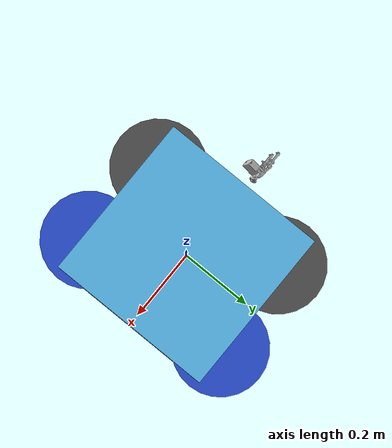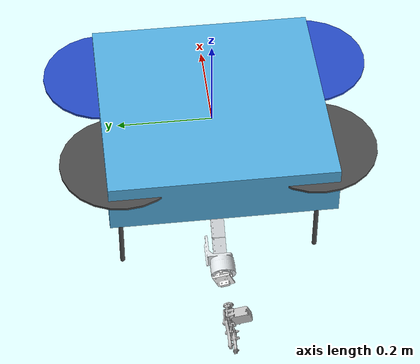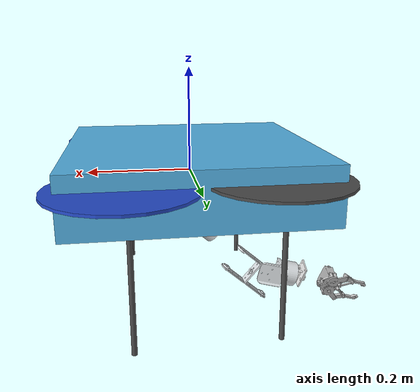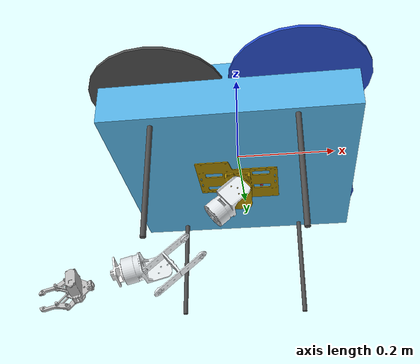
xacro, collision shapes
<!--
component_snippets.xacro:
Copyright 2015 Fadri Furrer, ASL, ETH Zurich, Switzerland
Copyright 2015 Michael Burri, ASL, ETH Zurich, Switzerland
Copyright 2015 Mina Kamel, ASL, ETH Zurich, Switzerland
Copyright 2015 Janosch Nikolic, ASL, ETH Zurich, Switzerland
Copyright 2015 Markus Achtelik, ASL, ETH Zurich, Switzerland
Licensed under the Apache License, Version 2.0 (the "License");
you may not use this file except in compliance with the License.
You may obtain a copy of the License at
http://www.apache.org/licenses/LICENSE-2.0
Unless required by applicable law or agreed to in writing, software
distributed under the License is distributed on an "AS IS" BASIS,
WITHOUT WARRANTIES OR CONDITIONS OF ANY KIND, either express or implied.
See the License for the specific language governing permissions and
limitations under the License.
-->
<?xml version="1.0"?>

<robot name="iris" xmlns:xacro="http://ros.org/wiki/xacro">
  <!-- Properties that can be assigned at build time as arguments.
  Is there a reason not to make all properties arguments?
  -->
  <xacro:arg name='name' default='iris_0' />
  <xacro:arg name='mavlink_addr' default='INADDR_ANY' />
  <xacro:arg name='mavlink_udp_port' default='14560' />
  <xacro:arg name='mavlink_tcp_port' default='4560' />
  <xacro:arg name='serial_enabled' default='false' />
  <xacro:arg name='serial_device' default='/dev/ttyACM0' />
  <xacro:arg name='baudrate' default='921600' />
  <xacro:arg name='qgc_addr' default='INADDR_ANY' />
  <xacro:arg name='qgc_udp_port' default='14550' />
  <xacro:arg name='sdk_addr' default='INADDR_ANY' />
  <xacro:arg name='sdk_udp_port' default='14540' />
  <xacro:arg name='hil_mode' default='false' />
  <xacro:arg name='hil_state_level' default='false' />
  <xacro:arg name='send_vision_estimation' default='false' />
  <xacro:arg name='send_odometry' default='false' />
  <xacro:arg name='enable_lockstep' default='true' />
  <xacro:arg name='use_tcp' default='true' />
  <xacro:arg name='vehicle_is_tailsitter' default='false' />
  <xacro:arg name='visual_material' default='DarkGrey' />
  <xacro:arg name='enable_mavlink_interface' default='true' />
  <xacro:arg name='enable_wind' default='false' />
  <!-- The following causes segfault with multiple vehicles if defaults to true!!! -->
  <xacro:arg name='enable_ground_truth' default='false' />
  <xacro:arg name='enable_cameras' default='true' />
  <xacro:arg name='enable_depth' default='true' />
  <xacro:arg name='enable_logging' default='false' />
  <xacro:arg name='log_file' default='iris' />

  <!-- macros for gazebo plugins, sensors -->
  <xacro:include filename="$(find le_arm)/urdf/component_snippets.xacro" />

  <!-- Instantiate iris "mechanics" -->
  <xacro:include filename="$(find le_arm)/urdf/iris.xacro" />

  <gazebo>
      <plugin name="gazebo_ros_control" filename="libgazebo_ros_control.so">
          <robotNamespace>/</robotNamespace>
      </plugin>

      <plugin name="gazebo_grasp_fix" filename="libgazebo_grasp_fix.so">
          <arm>
            <arm_name>gripper</arm_name>
            <palm_link>base_link</palm_link>
            <gripper_link>left_knuckle_link</gripper_link>
            <gripper_link>right_knuckle_link</gripper_link>
            <gripper_link>left_inner_knuckle_link</gripper_link>
            <gripper_link>left_finger_link</gripper_link>
            <gripper_link>right_inner_knuckle_link</gripper_link>
            <gripper_link>right_finger_link</gripper_link>
          </arm>
      <forces_angle_tolerance>10</forces_angle_tolerance>
      <update_rate>20</update_rate>
      <grip_count_threshold>1</grip_count_threshold>
      <max_grip_count>2</max_grip_count>
      <release_tolerance>0.1</release_tolerance>
      <disable_collisions_on_attach>true</disable_collisions_on_attach>
      <contact_topic>__default_topic__</contact_topic>
     </plugin>
  </gazebo>
  <!-- Instantiate arm "mechanics" -->
  <xacro:include filename="$(find le_arm)/urdf/le_arm.urdf.xacro" />
  <xacro:le_arm parent="base_link" >
    <origin xyz="0 0 0" rpy="-1.5708 0 3.14159"/>
  </xacro:le_arm>

  <xacro:if value="$(arg enable_wind)">
    <xacro:wind_plugin_macro
        namespace="${namespace}"
        wind_direction="0 0 1"
        wind_force_mean="0.7"
        xyz_offset="1 0 0"
        wind_gust_direction="0 0 0"
        wind_gust_duration="0"
        wind_gust_start="0"
        wind_gust_force_mean="0"
        />
  </xacro:if>

  <!-- Instantiate gps plugin. -->
  <xacro:gps_plugin_macro
    namespace="${namespace}"
    gps_noise="true"
    >
  </xacro:gps_plugin_macro>

  <!-- Instantiate magnetometer plugin. -->
  <xacro:magnetometer_plugin_macro
    namespace="${namespace}"
    pub_rate="20"
    noise_density="0.0004"
    random_walk="0.0000064"
    bias_correlation_time="600"
    mag_topic="/mag"
    >
  </xacro:magnetometer_plugin_macro>

  <!-- Instantiate barometer plugin. -->
  <xacro:barometer_plugin_macro
    namespace="${namespace}"
    pub_rate="10"
    baro_topic="/baro"
    >
  </xacro:barometer_plugin_macro>

  <xacro:if value="$(arg enable_mavlink_interface)">
  <!-- Instantiate mavlink telemetry interface. -->
  <xacro:mavlink_interface_macro
    namespace="${namespace}"
    imu_sub_topic="/imu"
    gps_sub_topic="/gps"
    mag_sub_topic="/mag"
    baro_sub_topic="/baro"
    mavlink_addr="$(arg mavlink_addr)"
    mavlink_udp_port="$(arg mavlink_udp_port)"
    mavlink_tcp_port="$(arg mavlink_tcp_port)"
    serial_enabled="$(arg serial_enabled)"
    serial_device="$(arg serial_device)"
    baudrate="$(arg baudrate)"
    qgc_addr="$(arg qgc_addr)"
    qgc_udp_port="$(arg qgc_udp_port)"
    sdk_addr="$(arg sdk_addr)"
    sdk_udp_port="$(arg sdk_udp_port)"
    hil_mode="$(arg hil_mode)"
    hil_state_level="$(arg hil_state_level)"
    vehicle_is_tailsitter="$(arg vehicle_is_tailsitter)"
    send_vision_estimation="$(arg send_vision_estimation)"
    send_odometry="$(arg send_odometry)"
    enable_lockstep="$(arg enable_lockstep)"
    use_tcp="$(arg use_tcp)"
    >
  </xacro:mavlink_interface_macro>
  </xacro:if>

  <!-- Mount an ADIS16448 IMU. -->
  <xacro:imu_plugin_macro
    namespace="${namespace}"
    imu_suffix=""
    parent_link="base_link"
    imu_topic="/imu"
    mass_imu_sensor="0.015"
    gyroscope_noise_density="0.0003394"
    gyroscopoe_random_walk="0.000038785"
    gyroscope_bias_correlation_time="1000.0"
    gyroscope_turn_on_bias_sigma="0.0087"
    accelerometer_noise_density="0.004"
    accelerometer_random_walk="0.006"
    accelerometer_bias_correlation_time="300.0"
    accelerometer_turn_on_bias_sigma="0.1960"
  >
    <inertia ixx="0.00001" ixy="0.0" ixz="0.0" iyy="0.00001" iyz="0.0" izz="0.00001" />
    <origin xyz="0 0 0" rpy="0 0 0" />
  </xacro:imu_plugin_macro>

  <xacro:if value="$(arg enable_ground_truth)">
    <!-- Mount an IMU providing ground truth. -->
    <xacro:imu_plugin_macro
      namespace="${namespace}"
      imu_suffix="gt"
      parent_link="base_link"
      imu_topic="ground_truth/imu"
      mass_imu_sensor="0.00001"
      gyroscope_noise_density="0.0"
      gyroscopoe_random_walk="0.0"
      gyroscope_bias_correlation_time="1000.0"
      gyroscope_turn_on_bias_sigma="0.0"
      accelerometer_noise_density="0.0"
      accelerometer_random_walk="0.0"
      accelerometer_bias_correlation_time="300.0"
      accelerometer_turn_on_bias_sigma="0.0"
    >
      <inertia ixx="0.00001" ixy="0.0" ixz="0.0" iyy="0.00001" iyz="0.0" izz="0.00001" />
      <origin xyz="0 0 0" rpy="0 0 0" />
    </xacro:imu_plugin_macro>

    <!-- Mount a generic odometry sensor providing ground truth. -->
    <xacro:odometry_plugin_macro
      namespace="${namespace}/ground_truth"
      odometry_sensor_suffix="gt"
      parent_link="base_link"
      pose_topic="pose"
      pose_with_covariance_topic="pose_with_covariance"
      position_topic="position"
      transform_topic="transform"
      odometry_topic="odometry"
      parent_frame_id="world"
      mass_odometry_sensor="0.00001"
      measurement_divisor="1"
      measurement_delay="0"
      unknown_delay="0.0"
      noise_normal_position="0 0 0"
      noise_normal_quaternion="0 0 0"
      noise_normal_linear_velocity="0 0 0"
      noise_normal_angular_velocity="0 0 0"
      noise_uniform_position="0 0 0"
      noise_uniform_quaternion="0 0 0"
      noise_uniform_linear_velocity="0 0 0"
      noise_uniform_angular_velocity="0 0 0"
      enable_odometry_map="false"
      odometry_map=""
      image_scale=""
    >
      <inertia ixx="0.00001" ixy="0.0" ixz="0.0" iyy="0.00001" iyz="0.0" izz="0.00001" /> <!-- [kg.m^2] [kg.m^2] [kg.m^2] [kg.m^2] [kg.m^2] [kg.m^2] -->
      <origin xyz="0.0 0.0 0.0" rpy="0.0 0.0 0.0" />
    </xacro:odometry_plugin_macro>
  </xacro:if>

  <xacro:if value="$(arg enable_logging)">
    <!-- Instantiate a logger -->
    <xacro:bag_plugin_macro
      namespace="${namespace}"
      bag_file="$(arg log_file)"
      rotor_velocity_slowdown_sim="${rotor_velocity_slowdown_sim}"
    >
    </xacro:bag_plugin_macro>
  </xacro:if>

  <!-- Instantiate a VI sensor. -->

  <xacro:include filename="$(find le_arm)/urdf/sensors/camera.urdf.xacro"/>

</robot>

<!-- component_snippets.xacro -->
<robot xmlns:xacro="http://ros.org/wiki/xacro">
  <!-- Macro to add logging to a bag file. -->
  <xacro:macro name="bag_plugin_macro"
    params="namespace bag_file rotor_velocity_slowdown_sim">
    <gazebo>
      <plugin filename="librotors_gazebo_bag_plugin.so" name="rosbag">
        <robotNamespace>${namespace}</robotNamespace>
        <bagFileName>${bag_file}</bagFileName>
        <linkName>base_link</linkName>
        <frameId>base_link</frameId>
        <commandAttitudeThrustSubTopic>command/attitude</commandAttitudeThrustSubTopic>
        <commandAttitudeThrustPubTopic>command/attitude</commandAttitudeThrustPubTopic>
        <rotorVelocitySlowdownSim>${rotor_velocity_slowdown_sim}</rotorVelocitySlowdownSim>
      </plugin>
    </gazebo>
  </xacro:macro>

  <!-- Macro to add a camera. -->
  <xacro:macro name="camera_macro"
    params="namespace parent_link camera_suffix frame_rate
      horizontal_fov image_width image_height image_format min_distance
      max_distance noise_mean noise_stddev enable_visual *cylinder *origin">
    <link name="${namespace}/camera_${camera_suffix}_link">
      <collision>
        <origin xyz="0 0 0" rpy="0 0 0" />
        <geometry>
          <xacro:insert_block name="cylinder" />
        </geometry>
      </collision>
      <xacro:if value="${enable_visual}">
        <visual>
          <origin xyz="0 0 0" rpy="0 1.57079632679 0" />
          <geometry>
            <xacro:insert_block name="cylinder" />
          </geometry>
          <material name="red" />
        </visual>
      </xacro:if>
      <inertial>
        <mass value="1e-5" />
        <origin xyz="0 0 0" rpy="0 0 0" />
        <inertia ixx="1e-6" ixy="0" ixz="0" iyy="1e-6" iyz="0" izz="1e-6" />
      </inertial>
    </link>
    <joint name="${namespace}/camera_${camera_suffix}_joint" type="fixed">
      <xacro:insert_block name="origin" />
      <parent link="${parent_link}" />
      <child link="${namespace}/camera_${camera_suffix}_link" />
    </joint>
    <gazebo reference="${namespace}/camera_${camera_suffix}_link">
      <sensor type="camera" name="${namespace}_camera_${camera_suffix}">
        <update_rate>${frame_rate}</update_rate>
        <camera name="head">
          <horizontal_fov>${horizontal_fov}</horizontal_fov>
          <image>
            <width>${image_width}</width>
            <height>${image_height}</height>
            <format>${image_format}</format>
          </image>
          <clip>
            <near>${min_distance}</near>
            <far>${max_distance}</far>
          </clip>
          <noise>
            <type>gaussian</type>
            <!-- Noise is sampled independently per pixel on each frame.
                 That pixel's noise value is added to each of its color
                 channels, which at that point lie in the range [0,1]. -->
            <mean>${noise_mean}</mean>
            <stddev>${noise_stddev}</stddev>
          </noise>
        </camera>
        <plugin name="${namespace}_camera_${camera_suffix}_controller" filename="libgazebo_ros_camera.so">
          <robotNamespace>${namespace}</robotNamespace>
          <alwaysOn>true</alwaysOn>
          <updateRate>${frame_rate}</updateRate>
          <cameraName>${camera_suffix}</cameraName>
          <imageTopicName>image_raw</imageTopicName>
          <cameraInfoTopicName>camera_info</cameraInfoTopicName>
          <frameName>camera_${camera_suffix}_link</frameName>
          <hackBaseline>0.0</hackBaseline>
          <distortionK1>0.0</distortionK1>
          <distortionK2>0.0</distortionK2>
          <distortionK3>0.0</distortionK3>
          <distortionT1>0.0</distortionT1>
          <distortionT2>0.0</distortionT2>
        </plugin>
      </sensor>
    </gazebo>
  </xacro:macro>

  <!-- Macro to add the controller interface. -->
  <xacro:macro name="controller_plugin_macro" params="namespace imu_sub_topic">
    <gazebo>
      <plugin name="controller_interface" filename="libgazebo_controller_interface.so">
        <robotNamespace>${namespace}</robotNamespace>
        <commandAttitudeThrustSubTopic>/command/attitude</commandAttitudeThrustSubTopic>
        <commandRateThrustSubTopic>/command/rate</commandRateThrustSubTopic>
        <commandMotorSpeedSubTopic>/command/motor_speed</commandMotorSpeedSubTopic>
        <imuSubTopic>/${imu_sub_topic}</imuSubTopic>
        <motorSpeedCommandPubTopic>/gazebo/command/motor_speed</motorSpeedCommandPubTopic>
      </plugin>
    </gazebo>
  </xacro:macro>

  <!-- Macro to add the gps_plugin. -->
  <xacro:macro name="gps_plugin_macro" params="namespace gps_noise">
    <gazebo>
      <plugin name="gps_plugin" filename="libgazebo_gps_plugin.so">
        <robotNamespace>${namespace}</robotNamespace>
        <gpsNoise>${gps_noise}</gpsNoise>
      </plugin>
    </gazebo>
  </xacro:macro>

  <!-- Macro to add the magnetometer_plugin. -->
  <xacro:macro name="magnetometer_plugin_macro" params="namespace pub_rate noise_density random_walk bias_correlation_time mag_topic">
    <gazebo>
      <plugin name="magnetometer_plugin" filename="libgazebo_magnetometer_plugin.so">
        <robotNamespace>${namespace}</robotNamespace>
        <pubRate>${pub_rate}</pubRate>
        <noiseDensity>${noise_density}</noiseDensity>
        <randomWalk>${random_walk}</randomWalk>
        <biasCorrelationTime>${bias_correlation_time}</biasCorrelationTime>
        <magTopic>${mag_topic}</magTopic>
      </plugin>
    </gazebo>
  </xacro:macro>

  <!-- Macro to add the barometer_plugin. -->
  <xacro:macro name="barometer_plugin_macro" params="namespace pub_rate baro_topic">
    <gazebo>
      <plugin name="barometer_plugin" filename="libgazebo_barometer_plugin.so">
        <robotNamespace>${namespace}</robotNamespace>
        <pubRate>${pub_rate}</pubRate>
        <baroTopic>${baro_topic}</baroTopic>
      </plugin>
    </gazebo>
  </xacro:macro>

  <!-- Macro to add the mavlink interface. -->
  <xacro:macro name="mavlink_interface_macro" params="namespace imu_sub_topic gps_sub_topic mag_sub_topic baro_sub_topic mavlink_addr mavlink_udp_port mavlink_tcp_port serial_enabled serial_device baudrate qgc_addr qgc_udp_port sdk_addr sdk_udp_port hil_mode hil_state_level vehicle_is_tailsitter send_vision_estimation send_odometry enable_lockstep use_tcp">
    <gazebo>
      <plugin name="mavlink_interface" filename="libgazebo_mavlink_interface.so">
        <robotNamespace>${namespace}</robotNamespace>
        <imuSubTopic>${imu_sub_topic}</imuSubTopic>
        <gpsSubTopic>${gps_sub_topic}</gpsSubTopic>
        <magSubTopic>${mag_sub_topic}</magSubTopic>
        <baroSubTopic>${baro_sub_topic}</baroSubTopic>
        <mavlink_addr>$(arg mavlink_addr)</mavlink_addr>
        <mavlink_udp_port>$(arg mavlink_udp_port)</mavlink_udp_port>
        <mavlink_tcp_port>$(arg mavlink_tcp_port)</mavlink_tcp_port>
        <serialEnabled>$(arg serial_enabled)</serialEnabled>
        <serialDevice>$(arg serial_device)</serialDevice>
        <baudRate>$(arg baudrate)</baudRate>
        <qgc_addr>$(arg qgc_addr)</qgc_addr>
        <qgc_udp_port>$(arg qgc_udp_port)</qgc_udp_port>
        <sdk_addr>$(arg sdk_addr)</sdk_addr>
        <sdk_udp_port>$(arg sdk_udp_port)</sdk_udp_port>
        <hil_mode>$(arg hil_mode)</hil_mode>
        <hil_state_level>$(arg hil_state_level)</hil_state_level>
        <vehicle_is_tailsitter>$(arg vehicle_is_tailsitter)</vehicle_is_tailsitter>
        <send_vision_estimation>$(arg send_vision_estimation)</send_vision_estimation>
        <send_odometry>$(arg send_odometry)</send_odometry>
        <enable_lockstep>$(arg enable_lockstep)</enable_lockstep>
        <use_tcp>$(arg use_tcp)</use_tcp>
        <motorSpeedCommandPubTopic>/gazebo/command/motor_speed</motorSpeedCommandPubTopic>
        <control_channels>
          <channel name="rotor1">
            <input_index>0</input_index>
            <input_offset>0</input_offset>
            <input_scaling>1000</input_scaling>
            <zero_position_disarmed>0</zero_position_disarmed>
            <zero_position_armed>100</zero_position_armed>
            <joint_control_type>velocity</joint_control_type>
          </channel>
          <channel name="rotor2">
            <input_index>1</input_index>
            <input_offset>0</input_offset>
            <input_scaling>1000</input_scaling>
            <zero_position_disarmed>0</zero_position_disarmed>
            <zero_position_armed>100</zero_position_armed>
            <joint_control_type>velocity</joint_control_type>
          </channel>
          <channel name="rotor3">
            <input_index>2</input_index>
            <input_offset>0</input_offset>
            <input_scaling>1000</input_scaling>
            <zero_position_disarmed>0</zero_position_disarmed>
            <zero_position_armed>100</zero_position_armed>
            <joint_control_type>velocity</joint_control_type>
          </channel>
          <channel name="rotor4">
            <input_index>3</input_index>
            <input_offset>0</input_offset>
            <input_scaling>1000</input_scaling>
            <zero_position_disarmed>0</zero_position_disarmed>
            <zero_position_armed>100</zero_position_armed>
            <joint_control_type>velocity</joint_control_type>
          </channel>
          <channel name="rotor5">
            <input_index>4</input_index>
            <input_offset>1</input_offset>
            <input_scaling>324.6</input_scaling>
            <zero_position_disarmed>0</zero_position_disarmed>
            <zero_position_armed>0</zero_position_armed>
            <joint_control_type>velocity</joint_control_type>
            <joint_control_pid>
              <p>0.1</p>
              <i>0</i>
              <d>0</d>
              <iMax>0.0</iMax>
              <iMin>0.0</iMin>
              <cmdMax>2</cmdMax>
              <cmdMin>-2</cmdMin>
            </joint_control_pid>
            <joint_name>zephyr_delta_wing::propeller_joint</joint_name>
          </channel>
          <channel name="rotor6">
            <input_index>5</input_index>
            <input_offset>0</input_offset>
            <!-- joint limits [-0.524, 0.524] -->
            <input_scaling>0.524</input_scaling>
            <zero_position_disarmed>0</zero_position_disarmed>
            <zero_position_armed>0</zero_position_armed>
            <joint_control_type>position</joint_control_type>
            <joint_name>zephyr_delta_wing::flap_left_joint</joint_name>
            <joint_control_pid>
              <p>10.0</p>
              <i>0</i>
              <d>0</d>
              <iMax>0</iMax>
              <iMin>0</iMin>
              <cmdMax>20</cmdMax>
              <cmdMin>-20</cmdMin>
            </joint_control_pid>
          </channel>
          <channel name="rotor7">
            <input_index>6</input_index>
            <input_offset>0</input_offset>
            <!-- joint limits [-0.524, 0.524] -->
            <input_scaling>0.524</input_scaling>
            <zero_position_disarmed>0</zero_position_disarmed>
            <zero_position_armed>0</zero_position_armed>
            <joint_control_type>position</joint_control_type>
            <joint_name>zephyr_delta_wing::flap_right_joint</joint_name>
            <joint_control_pid>
              <p>10.0</p>
              <i>0</i>
              <d>0</d>
              <iMax>0</iMax>
              <iMin>0</iMin>
              <cmdMax>20</cmdMax>
              <cmdMin>-20</cmdMin>
            </joint_control_pid>
          </channel>
          <channel name="rotor8">
            <input_index>7</input_index>
            <input_offset>0</input_offset>
            <input_scaling>0.524</input_scaling>
            <zero_position_disarmed>0</zero_position_disarmed>
            <zero_position_armed>0</zero_position_armed>
            <joint_control_type>position</joint_control_type>
          </channel>
        </control_channels>
      </plugin>
    </gazebo>
  </xacro:macro>

  <!-- Macro to add the mavlink interface for a fixed-wing model. -->
  <xacro:macro name="mavlink_interface_macro_fw" params="namespace imu_sub_topic gps_sub_topic mag_sub_topic baro_sub_topic mavlink_addr mavlink_udp_port mavlink_tcp_port serial_enabled serial_device baudrate qgc_addr qgc_udp_port sdk_addr sdk_udp_port hil_mode hil_state_level vehicle_is_tailsitter send_vision_estimation send_odometry enable_lockstep use_tcp">
    <gazebo>
      <plugin name="mavlink_interface" filename="libgazebo_mavlink_interface.so">
        <robotNamespace>${namespace}</robotNamespace>
        <imuSubTopic>${imu_sub_topic}</imuSubTopic>
        <gpsSubTopic>${gps_sub_topic}</gpsSubTopic>
        <magSubTopic>${mag_sub_topic}</magSubTopic>
        <baroSubTopic>${baro_sub_topic}</baroSubTopic>
        <mavlink_addr>$(arg mavlink_addr)</mavlink_addr>
        <mavlink_udp_port>$(arg mavlink_udp_port)</mavlink_udp_port>
        <mavlink_tcp_port>$(arg mavlink_tcp_port)</mavlink_tcp_port>
        <serialEnabled>$(arg serial_enabled)</serialEnabled>
        <serialDevice>$(arg serial_device)</serialDevice>
        <baudRate>$(arg baudrate)</baudRate>
        <qgc_addr>$(arg qgc_addr)</qgc_addr>
        <qgc_udp_port>$(arg qgc_udp_port)</qgc_udp_port>
        <sdk_addr>$(arg sdk_addr)</sdk_addr>
        <sdk_udp_port>$(arg sdk_udp_port)</sdk_udp_port>
        <hil_mode>$(arg hil_mode)</hil_mode>
        <hil_state_level>$(arg hil_state_level)</hil_state_level>
        <vehicle_is_tailsitter>$(arg vehicle_is_tailsitter)</vehicle_is_tailsitter>
        <send_vision_estimation>$(arg send_vision_estimation)</send_vision_estimation>
        <send_odometry>$(arg send_odometry)</send_odometry>
        <enable_lockstep>$(arg enable_lockstep)</enable_lockstep>
        <use_tcp>$(arg use_tcp)</use_tcp>
        <motorSpeedCommandPubTopic>/gazebo/command/motor_speed</motorSpeedCommandPubTopic>
        <control_channels>
          <channel name="rudder">
            <input_index>2</input_index>
            <input_offset>0</input_offset>
            <input_scaling>1</input_scaling>
            <zero_position_disarmed>0</zero_position_disarmed>
            <zero_position_armed>0</zero_position_armed>
            <joint_control_type>position_kinematic</joint_control_type>
            <joint_name>rudder_joint</joint_name>
          </channel>
          <channel name="rotor_4">
            <input_index>4</input_index>
            <input_offset>0</input_offset>
            <input_scaling>3500</input_scaling>
            <zero_position_disarmed>0</zero_position_disarmed>
            <zero_position_armed>0</zero_position_armed>
            <joint_control_type>velocity</joint_control_type>
            <joint_name>rotor_4_joint</joint_name>
          </channel>
          <channel name="left_aileron">
            <input_index>5</input_index>
            <input_offset>0</input_offset>
            <input_scaling>1</input_scaling>
            <zero_position_disarmed>0</zero_position_disarmed>
            <zero_position_armed>0</zero_position_armed>
            <joint_control_type>position_kinematic</joint_control_type>
            <joint_name>left_elevon_joint</joint_name>
          </channel>
          <channel name="right_aileron">
            <input_index>6</input_index>
            <input_offset>0</input_offset>
            <input_scaling>1</input_scaling>
            <zero_position_disarmed>0</zero_position_disarmed>
            <zero_position_armed>0</zero_position_armed>
            <joint_control_type>position_kinematic</joint_control_type>
            <joint_name>right_elevon_joint</joint_name>
          </channel>
          <channel name="elevator">
            <input_index>7</input_index>
            <input_offset>0</input_offset>
            <input_scaling>1</input_scaling>
            <zero_position_disarmed>0</zero_position_disarmed>
            <zero_position_armed>0</zero_position_armed>
            <joint_control_type>position_kinematic</joint_control_type>
            <joint_name>elevator_joint</joint_name>
          </channel>
        </control_channels>
      </plugin>
    </gazebo>
  </xacro:macro>

  <!-- Macro to add the mavlink interface for a fixed-wing model. -->
  <xacro:macro name="mavlink_interface_macro_vtol" params="namespace imu_sub_topic gps_sub_topic mag_sub_topic baro_sub_topic mavlink_addr mavlink_udp_port mavlink_tcp_port serial_enabled serial_device baudrate qgc_addr qgc_udp_port sdk_addr sdk_udp_port hil_mode hil_state_level vehicle_is_tailsitter send_vision_estimation send_odometry enable_lockstep use_tcp">
    <gazebo>
      <plugin name='mavlink_interface' filename='libgazebo_mavlink_interface.so'>
        <robotNamespace>${namespace}</robotNamespace>
        <imuSubTopic>${imu_sub_topic}</imuSubTopic>
        <gpsSubTopic>${gps_sub_topic}</gpsSubTopic>
        <magSubTopic>${mag_sub_topic}</magSubTopic>
        <baroSubTopic>${baro_sub_topic}</baroSubTopic>
        <mavlink_addr>$(arg mavlink_addr)</mavlink_addr>
        <mavlink_udp_port>$(arg mavlink_udp_port)</mavlink_udp_port>
        <mavlink_tcp_port>$(arg mavlink_tcp_port)</mavlink_tcp_port>
        <serialEnabled>$(arg serial_enabled)</serialEnabled>
        <serialDevice>$(arg serial_device)</serialDevice>
        <baudRate>$(arg baudrate)</baudRate>
        <qgc_addr>$(arg qgc_addr)</qgc_addr>
        <qgc_udp_port>$(arg qgc_udp_port)</qgc_udp_port>
        <sdk_addr>$(arg sdk_addr)</sdk_addr>
        <sdk_udp_port>$(arg sdk_udp_port)</sdk_udp_port>
        <hil_mode>$(arg hil_mode)</hil_mode>
        <hil_state_level>$(arg hil_state_level)</hil_state_level>
        <vehicle_is_tailsitter>$(arg vehicle_is_tailsitter)</vehicle_is_tailsitter>
        <send_vision_estimation>$(arg send_vision_estimation)</send_vision_estimation>
        <send_odometry>$(arg send_odometry)</send_odometry>
        <enable_lockstep>$(arg enable_lockstep)</enable_lockstep>
        <use_tcp>$(arg use_tcp)</use_tcp>
        <motorSpeedCommandPubTopic>/gazebo/command/motor_speed</motorSpeedCommandPubTopic>
        <control_channels>
          <channel name="rotor0">
            <input_index>0</input_index>
            <input_offset>0</input_offset>
            <input_scaling>1500</input_scaling>
            <zero_position_disarmed>0</zero_position_disarmed>
            <zero_position_armed>0</zero_position_armed>
            <joint_control_type>velocity</joint_control_type>
            <joint_name>rotor_0_joint</joint_name>
          </channel>
          <channel name="rotor1">
            <input_index>1</input_index>
            <input_offset>0</input_offset>
            <input_scaling>1500</input_scaling>
            <zero_position_disarmed>0</zero_position_disarmed>
            <zero_position_armed>0</zero_position_armed>
            <joint_control_type>velocity</joint_control_type>
            <joint_name>rotor_1_joint</joint_name>
          </channel>
          <channel name="rotor2">
            <input_index>2</input_index>
            <input_offset>0</input_offset>
            <input_scaling>1500</input_scaling>
            <zero_position_disarmed>0</zero_position_disarmed>
            <zero_position_armed>0</zero_position_armed>
            <joint_control_type>velocity</joint_control_type>
            <joint_name>rotor_2_joint</joint_name>
          </channel>
          <channel name="rotor3">
            <input_index>3</input_index>
            <input_offset>0</input_offset>
            <input_scaling>1500</input_scaling>
            <zero_position_disarmed>0</zero_position_disarmed>
            <zero_position_armed>0</zero_position_armed>
            <joint_control_type>velocity</joint_control_type>
            <joint_name>rotor_3_joint</joint_name>
          </channel>
          <channel name="rotor4">
            <input_index>4</input_index>
            <input_offset>0</input_offset>
            <input_scaling>5500</input_scaling>
            <zero_position_disarmed>0</zero_position_disarmed>
            <zero_position_armed>0</zero_position_armed>
            <joint_control_type>velocity</joint_control_type>
            <joint_name>rotor_puller_joint</joint_name>
          </channel>
          <channel name="left_elevon">
            <input_index>5</input_index>
            <input_offset>0</input_offset>
            <input_scaling>1</input_scaling>
            <zero_position_disarmed>0</zero_position_disarmed>
            <zero_position_armed>0</zero_position_armed>
            <joint_control_type>position_kinematic</joint_control_type>
            <joint_name>left_elevon_joint</joint_name>
          </channel>
          <channel name="right_elevon">
            <input_index>6</input_index>
            <input_offset>0</input_offset>
            <input_scaling>1</input_scaling>
            <zero_position_disarmed>0</zero_position_disarmed>
            <zero_position_armed>0</zero_position_armed>
            <joint_control_type>position_kinematic</joint_control_type>
            <joint_name>right_elevon_joint</joint_name>
          </channel>
          <channel name="elevator">
            <input_index>7</input_index>
            <input_offset>0</input_offset>
            <input_scaling>1</input_scaling>
            <zero_position_disarmed>0</zero_position_disarmed>
            <zero_position_armed>0</zero_position_armed>
            <joint_control_type>position_kinematic</joint_control_type>
            <joint_name>elevator_joint</joint_name>
          </channel>
        </control_channels>
        <left_elevon_joint>
          left_elevon_joint
        </left_elevon_joint>
        <right_elevon_joint>
          right_elevon_joint
        </right_elevon_joint>
        <elevator_joint>
          elevator_joint
        </elevator_joint>
      </plugin>
    </gazebo>
  </xacro:macro>

  <!-- Macro to add an IMU. -->
  <xacro:macro name="imu_plugin_macro"
    params="namespace imu_suffix parent_link imu_topic
      mass_imu_sensor gyroscope_noise_density gyroscopoe_random_walk
      gyroscope_bias_correlation_time gyroscope_turn_on_bias_sigma
      accelerometer_noise_density accelerometer_random_walk
      accelerometer_bias_correlation_time accelerometer_turn_on_bias_sigma
      *inertia *origin">
    <!-- IMU link -->
    <link name="${namespace}/imu${imu_suffix}_link">
      <inertial>
        <xacro:insert_block name="inertia" />
        <mass value="${mass_imu_sensor}" />  <!-- [kg] -->
        <origin xyz="0 0 0" rpy="0 0 0" />
      </inertial>
    </link>
    <!-- IMU joint -->
    <joint name="${namespace}/imu${imu_suffix}_joint" type="revolute">
      <xacro:insert_block name="origin" />
      <parent link="${parent_link}" />
      <child link="${namespace}/imu${imu_suffix}_link" />
      <limit upper="0" lower="0" effort="0" velocity="0" />
    </joint>
    <gazebo>
      <plugin filename="libgazebo_imu_plugin.so" name="rotors_gazebo_imu${imu_suffix}_plugin">
      <!-- A good description of the IMU parameters can be found in the kalibr documentation:
           https://github.com/ethz-asl/kalibr/wiki/IMU-Noise-Model-and-Intrinsics -->
        <robotNamespace>${namespace}</robotNamespace> <!-- (string, required): ros namespace in which the messages are published -->
        <linkName>${namespace}/imu${imu_suffix}_link</linkName> <!-- (string, required): name of the body which holds the IMU sensor -->
        <imuTopic>${imu_topic}</imuTopic> <!-- (string): name of the sensor output topic and prefix of service names (defaults to imu) -->
        <gyroscopeNoiseDensity>${gyroscope_noise_density}</gyroscopeNoiseDensity> <!-- Gyroscope noise density (two-sided spectrum) [rad/s/sqrt(Hz)] -->
        <gyroscopeRandomWalk>${gyroscopoe_random_walk}</gyroscopeRandomWalk> <!-- Gyroscope bias random walk [rad/s/s/sqrt(Hz)] -->
        <gyroscopeBiasCorrelationTime>${gyroscope_bias_correlation_time}</gyroscopeBiasCorrelationTime> <!-- Gyroscope bias correlation time constant [s] -->
        <gyroscopeTurnOnBiasSigma>${gyroscope_turn_on_bias_sigma}</gyroscopeTurnOnBiasSigma> <!-- Gyroscope turn on bias standard deviation [rad/s] -->
        <accelerometerNoiseDensity>${accelerometer_noise_density}</accelerometerNoiseDensity> <!-- Accelerometer noise density (two-sided spectrum) [m/s^2/sqrt(Hz)] -->
        <accelerometerRandomWalk>${accelerometer_random_walk}</accelerometerRandomWalk> <!-- Accelerometer bias random walk. [m/s^2/s/sqrt(Hz)] -->
        <accelerometerBiasCorrelationTime>${accelerometer_bias_correlation_time}</accelerometerBiasCorrelationTime> <!-- Accelerometer bias correlation time constant [s] -->
        <accelerometerTurnOnBiasSigma>${accelerometer_turn_on_bias_sigma}</accelerometerTurnOnBiasSigma> <!-- Accelerometer turn on bias standard deviation [m/s^2] -->
      </plugin>
    </gazebo>
  </xacro:macro>

<!-- Macro to add a generic odometry sensor. -->
  <xacro:macro name="odometry_plugin_macro"
    params="
      namespace odometry_sensor_suffix parent_link pose_topic pose_with_covariance_topic
      position_topic transform_topic odometry_topic parent_frame_id
      mass_odometry_sensor measurement_divisor measurement_delay unknown_delay
      noise_normal_position noise_normal_quaternion noise_normal_linear_velocity
      noise_normal_angular_velocity noise_uniform_position
      noise_uniform_quaternion noise_uniform_linear_velocity
      noise_uniform_angular_velocity enable_odometry_map odometry_map
      image_scale *inertia *origin">
    <!-- odometry link -->
    <link name="${namespace}/odometry_sensor${odometry_sensor_suffix}_link">
      <inertial>
        <xacro:insert_block name="inertia" />
        <mass value="${mass_odometry_sensor}" />  <!-- [kg] -->
      </inertial>
    </link>
    <!-- odometry joint -->
    <joint name="${namespace}/odometry_sensor${odometry_sensor_suffix}_joint" type="revolute">
      <parent link="${parent_link}" />
      <xacro:insert_block name="origin" />
      <child link="${namespace}/odometry_sensor${odometry_sensor_suffix}_link" />
      <limit upper="0" lower="0" effort="0" velocity="0" />
    </joint>
    <gazebo>
      <plugin filename="librotors_gazebo_odometry_plugin.so" name="odometry_sensor${odometry_sensor_suffix}">
        <linkName>${namespace}/odometry_sensor${odometry_sensor_suffix}_link</linkName>
        <robotNamespace>${namespace}</robotNamespace>
        <poseTopic>${pose_topic}</poseTopic>
        <poseWithCovarianceTopic>${pose_with_covariance_topic}</poseWithCovarianceTopic>
        <positionTopic>${position_topic}</positionTopic>
        <transformTopic>${transform_topic}</transformTopic>
        <odometryTopic>${odometry_topic}</odometryTopic>
        <parentFrameId>${parent_frame_id}</parentFrameId>  <!-- Use the scoped link name here. e.g. Model::link. -->
        <measurementDivisor>${measurement_divisor}</measurementDivisor> <!-- only every (seq % measurementDivisor) == 0 measurement is published [int] -->
        <measurementDelay>${measurement_delay}</measurementDelay> <!-- time that measurement gets held back before it's published in [simulation cycles (int)] -->
        <unknownDelay>${unknown_delay}</unknownDelay> <!-- additional delay, that just gets added to the timestamp [s] -->
        <noiseNormalPosition>${noise_normal_position}</noiseNormalPosition> <!-- standard deviation of additive white gaussian noise [m] -->
        <noiseNormalQuaternion>${noise_normal_quaternion}</noiseNormalQuaternion> <!-- standard deviation white gaussian noise [rad]: q_m = q*quaternionFromSmallAngleApproximation(noiseNormalQ) -->
        <noiseNormalLinearVelocity>${noise_normal_linear_velocity}</noiseNormalLinearVelocity> <!-- standard deviation of additive white gaussian noise [m/s] -->
        <noiseNormalAngularVelocity>${noise_normal_angular_velocity}</noiseNormalAngularVelocity> <!-- standard deviation of additive white gaussian noise [rad/s] -->
        <noiseUniformPosition>${noise_uniform_position}</noiseUniformPosition> <!-- symmetric bounds of uniform noise [m] -->
        <noiseUniformQuaternion>${noise_uniform_quaternion}</noiseUniformQuaternion> <!-- symmetric bounds of uniform noise [rad], computation see above -->
        <noiseUniformLinearVelocity>${noise_uniform_linear_velocity}</noiseUniformLinearVelocity>  <!-- symmetric bounds of uniform noise [m/s] -->
        <noiseUniformAngularVelocity>${noise_uniform_angular_velocity}</noiseUniformAngularVelocity>  <!-- symmetric bounds of uniform noise [rad/s] -->
        <xacro:if value="${enable_odometry_map}">
          <covarianceImage>package://rotors_gazebo/resource/${odometry_map}</covarianceImage>
          <covarianceImageScale>${image_scale}</covarianceImageScale>
        </xacro:if>
      </plugin>
    </gazebo>
  </xacro:macro>

  <!-- Macro to add the wind plugin. -->
  <xacro:macro name="wind_plugin_macro"
    params="namespace xyz_offset wind_direction wind_force_mean
      wind_gust_direction wind_gust_duration wind_gust_start
      wind_gust_force_mean">
    <gazebo>
      <plugin filename="libgazebo_wind_plugin.so" name="wind_plugin">
        <frameId>base_link</frameId>
        <linkName>base_link</linkName>
        <robotNamespace>${namespace}</robotNamespace>
        <xyzOffset>${xyz_offset}</xyzOffset>
        <windDirection>${wind_direction}</windDirection>
        <windForceMean>${wind_force_mean}</windForceMean>
        <windGustDirection>${wind_gust_direction}</windGustDirection>
        <windGustDuration>${wind_gust_duration}</windGustDuration>
        <windGustStart>${wind_gust_start}</windGustStart>
        <windGustForceMean>${wind_gust_force_mean}</windGustForceMean>
      </plugin>
    </gazebo>
  </xacro:macro>

  <!-- VI sensor macros -->
  <!-- Macro to add a VI-sensor camera. -->
  <xacro:macro name="vi_sensor_camera_macro"
    params="namespace parent_link camera_suffix frame_rate *origin">
    <xacro:camera_macro
      namespace="${namespace}"
      parent_link="${parent_link}"
      camera_suffix="${camera_suffix}"
      frame_rate="${frame_rate}"
      horizontal_fov="1.3962634"
      image_width="752"
      image_height="480"
      image_format="L8"
      min_distance="0.02"
      max_distance="30"
      noise_mean="0.0"
      noise_stddev="0.007"
      enable_visual="false">
      <cylinder length="0.01" radius="0.007" />
      <xacro:insert_block name="origin" />
    </xacro:camera_macro>
  </xacro:macro>

  <!-- Macro to add a depth camera on the VI-sensor. -->
  <xacro:macro name="vi_sensor_depth_macro"
    params="namespace parent_link camera_suffix frame_rate *origin">
    <link name="${namespace}/camera_${camera_suffix}_link">
      <collision>
        <origin xyz="0 0 0" rpy="0 0 0" />
        <geometry>
          <cylinder length="0.01" radius="0.007" />
        </geometry>
      </collision>
      <inertial>
        <mass value="1e-5" />
        <origin xyz="0 0 0" rpy="0 0 0" />
        <inertia ixx="1e-6" ixy="0" ixz="0" iyy="1e-6" iyz="0" izz="1e-6" />
      </inertial>
    </link>
    <joint name="${namespace}/camera_${camera_suffix}_joint" type="fixed">
      <xacro:insert_block name="origin" />
      <parent link="${parent_link}" />
      <child link="${namespace}/camera_${camera_suffix}_link" />
      <limit upper="0" lower="0" effort="0" velocity="0" />
    </joint>
    <!-- Optical center of camera -->
    <link name="${namespace}/camera_${camera_suffix}_optical_center_link" />
    <joint name="${namespace}/camera_${camera_suffix}_optical_center_joint" type="fixed">
      <origin xyz="0 0 0" rpy="-1.57 0 -1.57" />
      <parent link="${namespace}/camera_${camera_suffix}_link" />
      <child link="${namespace}/camera_${camera_suffix}_optical_center_link" />
      <limit upper="0" lower="0" effort="0" velocity="0" />
    </joint>
    <gazebo reference="${namespace}/camera_${camera_suffix}_link">
      <sensor type="depth" name="${namespace}_camera_{camera_suffix}">
        <always_on>true</always_on>
        <update_rate>${frame_rate}</update_rate>
        <camera>
          <horizontal_fov>2</horizontal_fov>
          <image>
            <format>L8</format>
            <width>640</width>
            <height>480</height>
          </image>
          <clip>
            <near>0.01</near>
            <far>100</far>
          </clip>
        </camera>
        <plugin name="${namespace}_camera_{camera_suffix}" filename="libgazebo_ros_openni_kinect.so">
          <robotNamespace>${namespace}</robotNamespace>
          <alwaysOn>true</alwaysOn>
          <baseline>0.11</baseline>
          <updateRate>${frame_rate}</updateRate>
          <cameraName>camera_${camera_suffix}</cameraName>
          <imageTopicName>camera/image_raw</imageTopicName>
          <cameraInfoTopicName>camera/camera_info</cameraInfoTopicName>
          <depthImageTopicName>depth/disparity</depthImageTopicName>
          <depthImageCameraInfoTopicName>depth/camera_info</depthImageCameraInfoTopicName>
          <pointCloudTopicName>depth/points</pointCloudTopicName>
          <frameName>camera_${camera_suffix}_optical_center_link</frameName>
          <pointCloudCutoff>0.5</pointCloudCutoff>
          <distortionK1>0.0</distortionK1>
          <distortionK2>0.0</distortionK2>
          <distortionK3>0.0</distortionK3>
          <distortionT1>0.0</distortionT1>
          <distortionT2>0.0</distortionT2>
        </plugin>
      </sensor>
    </gazebo>
  </xacro:macro>

  <!-- VI-Sensor Macro -->
  <xacro:macro name="vi_sensor_macro" params="namespace parent_link *origin">
    <!-- Vi Sensor Link -->
    <link name="${namespace}/vi_sensor_link">
      <collision>
        <origin xyz="0 0 0" rpy="0 0 0" />
        <geometry>
         <box size="0.015 0.1 0.02" />
        </geometry>
      </collision>

      <visual>
        <origin xyz="0 0 0" rpy="0 0 0" />
        <geometry>
          <box size="0.015 0.1 0.02" />
        </geometry>
      </visual>

      <inertial>
        <mass value="0.13" />
        <origin xyz="0 0 0" rpy="0 0 0" />
        <inertia ixx="1e-6" ixy="0" ixz="0" iyy="1e-6" iyz="0" izz="1e-6" />
      </inertial>
    </link>
    <joint name="{namespace}_vi_sensor_joint" type="fixed">
      <xacro:insert_block name="origin" />
      <parent link="${parent_link}" />
      <child link="${namespace}/vi_sensor_link" />
    </joint>
    <!-- Cameras -->
    <xacro:if value="$(arg enable_cameras)">
      <!-- Left Camera -->
      <xacro:vi_sensor_camera_macro
        namespace="${namespace}/stereo_camera" parent_link="${namespace}/vi_sensor_link"
        camera_suffix="left" frame_rate="30.0">
        <origin xyz="0.015 0.055 0.0065" rpy="0 0 0" />
      </xacro:vi_sensor_camera_macro>
      <!-- Right Camera -->
      <xacro:vi_sensor_camera_macro namespace="${namespace}/stereo_camera"
        parent_link="${namespace}/vi_sensor_link"
        camera_suffix="right" frame_rate="30.0">
        <origin xyz="0.015 -0.055 0.0065" rpy="0 0 0" />
      </xacro:vi_sensor_camera_macro>
    </xacro:if>

    <!-- Depth Sensor -->
    <xacro:if value="$(arg enable_depth)">
      <xacro:vi_sensor_depth_macro
        namespace="${namespace}" parent_link="${namespace}/vi_sensor_link"
        camera_suffix="depth" frame_rate="30.0">
        <origin xyz="0.015 0.055 0.0065" rpy="0 0 0" />
      </xacro:vi_sensor_depth_macro>
    </xacro:if>

    <!-- Groundtruth -->
    <xacro:if value="$(arg enable_ground_truth)">
      <!-- Odometry Sensor -->
      <xacro:odometry_plugin_macro
        namespace="${namespace}/ground_truth"
        odometry_sensor_suffix=""
        parent_link="${namespace}/vi_sensor_link"
        pose_topic="pose"
        pose_with_covariance_topic="pose_with_covariance"
        position_topic="position"
        transform_topic="transform"
        odometry_topic="odometry"
        parent_frame_id="world"
        mass_odometry_sensor="0.00001"
        measurement_divisor="1"
        measurement_delay="0"
        unknown_delay="0.0"
        noise_normal_position="0 0 0"
        noise_normal_quaternion="0 0 0"
        noise_normal_linear_velocity="0 0 0"
        noise_normal_angular_velocity="0 0 0"
        noise_uniform_position="0 0 0"
        noise_uniform_quaternion="0 0 0"
        noise_uniform_linear_velocity="0 0 0"
        noise_uniform_angular_velocity="0 0 0"
        enable_odometry_map="false"
        odometry_map=""
        image_scale="">
        <inertia ixx="0.00001" ixy="0.0" ixz="0.0" iyy="0.00001" iyz="0.0" izz="0.00001" /> <!-- [kg.m^2] [kg.m^2] [kg.m^2] [kg.m^2] [kg.m^2] [kg.m^2] -->
        <origin xyz="0.0 0.0 0.0" rpy="0.0 0.0 0.0" />
      </xacro:odometry_plugin_macro>
    </xacro:if>

    <!-- ADIS16448 IMU. -->
    <xacro:imu_plugin_macro
      namespace="${namespace}"
      imu_suffix="vi_sensor"
      parent_link="${namespace}/vi_sensor_link"
      imu_topic="${namespace}/vi_sensor/imu"
      mass_imu_sensor="0.015"
      gyroscope_noise_density="0.0003394"
      gyroscopoe_random_walk="0.000038785"
      gyroscope_bias_correlation_time="1000.0"
      gyroscope_turn_on_bias_sigma="0.0087"
      accelerometer_noise_density="0.004"
      accelerometer_random_walk="0.006"
      accelerometer_bias_correlation_time="300.0"
      accelerometer_turn_on_bias_sigma="0.1960">
      <inertia ixx="0.00001" ixy="0.0" ixz="0.0" iyy="0.00001" iyz="0.0" izz="0.00001" />
      <origin xyz="0.015 0 0.0113" rpy="0 0 0" />
    </xacro:imu_plugin_macro>
  </xacro:macro>

</robot>

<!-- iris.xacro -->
<robot name="iris" xmlns:xacro="http://ros.org/wiki/xacro">
  <!-- Properties -->
  <xacro:property name="namespace" value="" />
  <xacro:property name="rotor_velocity_slowdown_sim" value="10" />
  <xacro:property name="mesh_file" value="iris.stl" />
  <xacro:property name="mesh_scale" value="1 1 1"/>
  <xacro:property name="mesh_scale_prop" value="1 1 1"/>
  <xacro:property name="mass" value="1.5" /> <!-- [kg] -->
  <xacro:property name="body_width" value="0.47" />
  <xacro:property name="body_height" value="0.11" />
  <xacro:property name="mass_rotor" value="0.005" /> <!-- [kg] -->
  <xacro:property name="arm_length_front_x" value="0.13" />
  <xacro:property name="arm_length_back_x" value="0.13" />
  <xacro:property name="arm_length_front_y" value="0.22" />
  <xacro:property name="arm_length_back_y" value="0.2" />
  <xacro:property name="rotor_offset_top" value="0.023" />
  <xacro:property name="radius_rotor" value="0.128" />
  <xacro:property name="motor_constant" value="8.54858e-06" /> <!-- [kg.m/s^2] -->
  <xacro:property name="moment_constant" value="0.06" />
  <xacro:property name="time_constant_up" value="0.0125" />
  <xacro:property name="time_constant_down" value="0.025" />
  <xacro:property name="max_rot_velocity" value="1100" /> <!-- [rad/s] -->
  <xacro:property name="sin30" value="0.5" />
  <xacro:property name="cos30" value="0.866025403784" />
  <xacro:property name="sqrt2" value="1.4142135623730951" />
  <xacro:property name="rotor_drag_coefficient" value="1.75e-04" />
  <xacro:property name="rolling_moment_coefficient" value="0.000001" />
  <xacro:property name="color" value="$(arg visual_material)" />

  <!-- Property Blocks -->
  <xacro:property name="body_inertia">
    <inertia
    ixx="${1/12 * mass * (body_height * body_height + body_width * body_width)}"
    iyy="${1/12 * mass * (body_height * body_height + body_width * body_width)}"
    izz="${1/12 * mass * (body_width * body_width + body_width * body_width)}"
    ixy="0.0" ixz="0.0" iyz="0.0" /> <!-- [kg.m^2] [kg.m^2] [kg.m^2] [kg.m^2] [kg.m^2] [kg.m^2] -->
  </xacro:property>

  <!-- inertia of a single rotor, assuming it is a cuboid. Height=3mm, width=15mm -->
  <xacro:property name="rotor_inertia">
    <inertia
    ixx="${1/12 * mass_rotor * (0.015 * 0.015 + 0.003 * 0.003) * rotor_velocity_slowdown_sim}"
    iyy="${1/12 * mass_rotor * (4 * radius_rotor * radius_rotor + 0.003 * 0.003) * rotor_velocity_slowdown_sim}"
    izz="${1/12 * mass_rotor * (4 * radius_rotor * radius_rotor + 0.015 * 0.015) * rotor_velocity_slowdown_sim}"
    ixy="0.0" ixz="0.0"  iyz="0.0" /> <!-- [kg.m^2] [kg.m^2] [kg.m^2] [kg.m^2] [kg.m^2] [kg.m^2] -->
  </xacro:property>

  <!-- Included URDF Files -->
  <xacro:include filename="$(find le_arm)/urdf/multirotor_base.xacro" />

  <!-- Instantiate multirotor_base_macro once -->
  <xacro:multirotor_base_macro
    robot_namespace="${namespace}"
    mass="${mass}"
    body_width="${body_width}"
    body_height="${body_height}"
    mesh_file="${mesh_file}"
    mesh_scale="${mesh_scale}"
    color="${color}"
    >
    <xacro:insert_block name="body_inertia" />
  </xacro:multirotor_base_macro>

  <!-- Instantiate rotors -->
  <xacro:vertical_rotor
    robot_namespace="${namespace}"
    suffix="front_right"
    direction="ccw"
    motor_constant="${motor_constant}"
    moment_constant="${moment_constant}"
    parent="base_link"
    mass_rotor="${mass_rotor}"
    radius_rotor="${radius_rotor}"
    time_constant_up="${time_constant_up}"
    time_constant_down="${time_constant_down}"
    max_rot_velocity="${max_rot_velocity}"
    motor_number="0"
    rotor_drag_coefficient="${rotor_drag_coefficient}"
    rolling_moment_coefficient="${rolling_moment_coefficient}"
    mesh="iris_prop"
    mesh_scale="${mesh_scale_prop}"
    color="Blue">
    <origin xyz="${arm_length_front_x} -${arm_length_front_y} ${rotor_offset_top}" rpy="0 0 0" />
    <xacro:insert_block name="rotor_inertia" />
  </xacro:vertical_rotor>

  <xacro:vertical_rotor
    robot_namespace="${namespace}"
    suffix="back_left"
    direction="ccw"
    motor_constant="${motor_constant}"
    moment_constant="${moment_constant}"
    parent="base_link"
    mass_rotor="${mass_rotor}"
    radius_rotor="${radius_rotor}"
    time_constant_up="${time_constant_up}"
    time_constant_down="${time_constant_down}"
    max_rot_velocity="${max_rot_velocity}"
    motor_number="1"
    rotor_drag_coefficient="${rotor_drag_coefficient}"
    rolling_moment_coefficient="${rolling_moment_coefficient}"
    mesh="iris_prop"
    mesh_scale="${mesh_scale_prop}"
    color="DarkGrey">
    <origin xyz="-${arm_length_back_x} ${arm_length_back_y} ${rotor_offset_top}" rpy="0 0 0" />
    <xacro:insert_block name="rotor_inertia" />
  </xacro:vertical_rotor>

  <xacro:vertical_rotor robot_namespace="${namespace}"
    suffix="front_left"
    direction="cw"
    motor_constant="${motor_constant}"
    moment_constant="${moment_constant}"
    parent="base_link"
    mass_rotor="${mass_rotor}"
    radius_rotor="${radius_rotor}"
    time_constant_up="${time_constant_up}"
    time_constant_down="${time_constant_down}"
    max_rot_velocity="${max_rot_velocity}"
    motor_number="2"
    rotor_drag_coefficient="${rotor_drag_coefficient}"
    rolling_moment_coefficient="${rolling_moment_coefficient}"
    mesh="iris_prop"
    mesh_scale="${mesh_scale_prop}"
    color="Blue">
    <origin xyz="${arm_length_front_x} ${arm_length_front_y} ${rotor_offset_top}" rpy="0 0 0" />
    <xacro:insert_block name="rotor_inertia" />
  </xacro:vertical_rotor>

  <xacro:vertical_rotor robot_namespace="${namespace}"
    suffix="back_right"
    direction="cw"
    motor_constant="${motor_constant}"
    moment_constant="${moment_constant}"
    parent="base_link"
    mass_rotor="${mass_rotor}"
    radius_rotor="${radius_rotor}"
    time_constant_up="${time_constant_up}"
    time_constant_down="${time_constant_down}"
    max_rot_velocity="${max_rot_velocity}"
    motor_number="3"
    rotor_drag_coefficient="${rotor_drag_coefficient}"
    rolling_moment_coefficient="${rolling_moment_coefficient}"
    mesh="iris_prop"
    mesh_scale="${mesh_scale_prop}"
    color="DarkGrey">
    <origin xyz="-${arm_length_back_x} -${arm_length_back_y} ${rotor_offset_top}" rpy="0 0 0" />
    <xacro:insert_block name="rotor_inertia" />
  </xacro:vertical_rotor>

</robot>

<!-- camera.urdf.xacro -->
<!-- BOTTOM FIXED LINK
This link is the base of the arm in which arm is placed
-->
<robot name="camera" xmlns:xacro="http://ros.org/wiki/xacro">

   <joint name="camera_joint" type="fixed">
        <origin xyz="0.05 0 -0.07" rpy="0 1.57 0"/>
        <parent link="base_link"/>
        <child link="camera_link"/>
   </joint>

   <!-- Camera -->
   <link name="camera_link">
       <collision>
           <origin xyz="0 0 0" rpy="0 0 0"/>
           <geometry>
            <mesh filename="package://le_arm/meshes/sensors/camera.STL" scale="0.1 0.1 0.1" />
           </geometry>
       </collision>

       <visual>
           <origin xyz="0 0 0" rpy="-3.14 0 -1.57"/>
           <geometry>
           <mesh filename="package://le_arm/meshes/sensors/camera.STL" />
           </geometry>
           <material name="red"/>
       </visual>

       <inertial>
        <mass value="0.00001" />
        <origin xyz="0 0 0" />
        <inertia ixx="0.00001" ixy="0.0" ixz="0.0"
          iyy="0.00001" iyz="0.0"
          izz="0.00001" />
       </inertial>
   </link>

   <xacro:include filename="$(find le_arm)/urdf/sensors/camera.gazebo.xacro"/>
</robot>
